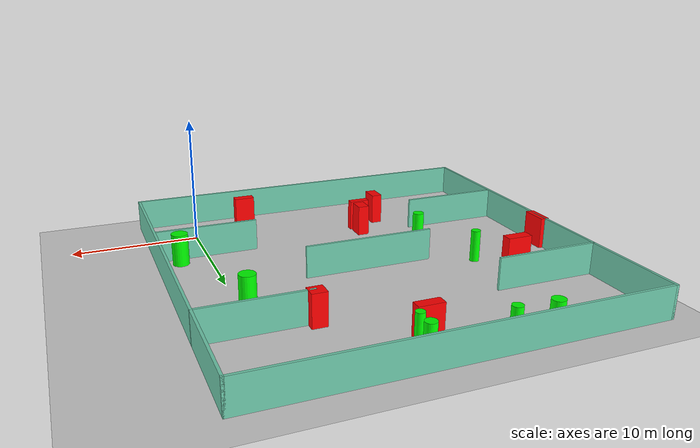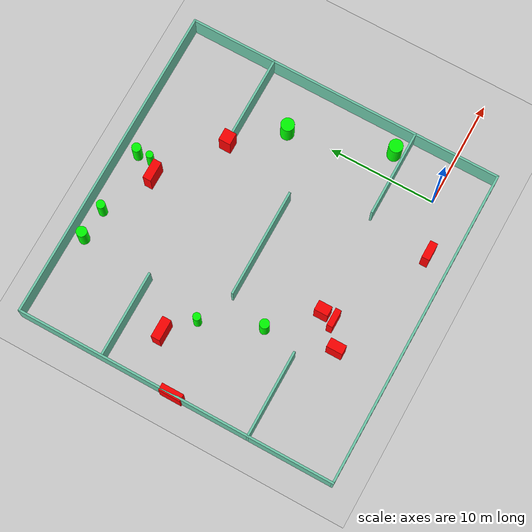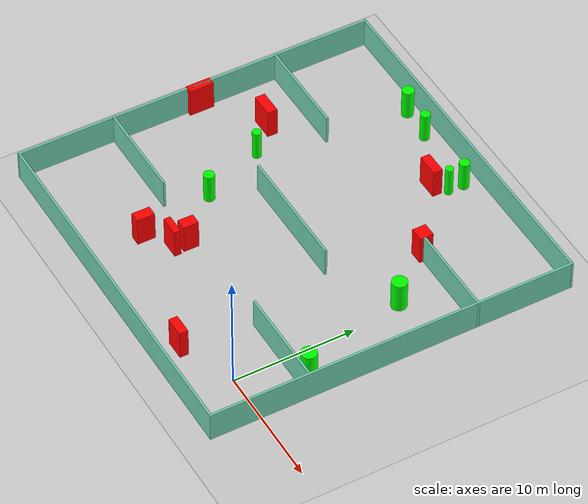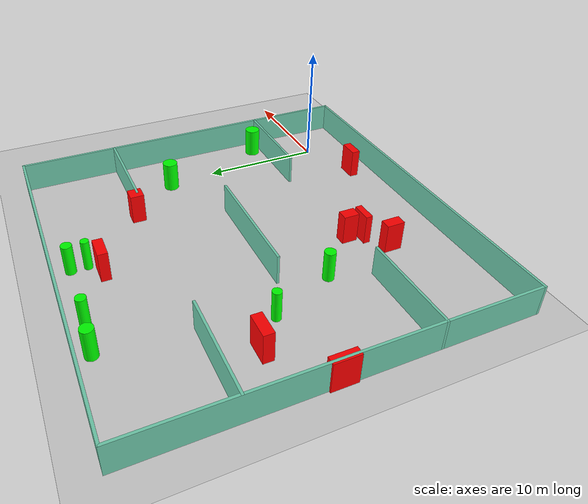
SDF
<sdf version="1.7">
 <world name="default">
  <light name="sun" type="directional">
   <pose>0 0 10 0 -0 0</pose>
   <diffuse>0.8 0.8 0.8 1</diffuse>
   <specular>0.2 0.2 0.2 1</specular>
   <attenuation>
    <range>1000</range>
    <constant>0.9</constant>
    <linear>0.01</linear>
    <quadratic>0.001</quadratic>
   </attenuation>
   <direction>-0.5 0.1 -0.9</direction>
   <spot><inner_angle>0</inner_angle><outer_angle>0</outer_angle><falloff>0</falloff></spot>
  </light>
  <model name="ground_plane">
   <static>1</static>
   <link name="link">
    <collision name="collision">
     <geometry><plane><normal>0 0 1</normal><size>100 100</size></plane></geometry>
     <surface>
      <contact><collide_bitmask>65535</collide_bitmask></contact>
      <friction><ode><mu>100</mu><mu2>50</mu2></ode></friction>
     </surface>
    </collision>
    <visual name="visual">
     <cast_shadows>0</cast_shadows>
     <geometry><plane><normal>0 0 1</normal><size>100 100</size></plane></geometry>
     <material>
      <script><uri>file://media/materials/scripts/gazebo.material</uri><name>Gazebo/Grey</name></script>
     </material>
    </visual>
   </link>
  </model>
  <gravity>0 0 -9.8</gravity>
  <magnetic_field>6e-06 2.3e-05 -4.2e-05</magnetic_field>
  <atmosphere type="adiabatic"/>
  <physics type="ode">
   <max_step_size>0.001</max_step_size>
   <real_time_factor>1</real_time_factor>
   <real_time_update_rate>1000</real_time_update_rate>
  </physics>
  <scene><ambient>0.4 0.4 0.4 1</ambient><background>0.7 0.7 0.7 1</background><shadows>1</shadows></scene>
  <spherical_coordinates>
   <surface_model>EARTH_WGS84</surface_model>
   <latitude_deg>0</latitude_deg>
   <longitude_deg>0</longitude_deg>
   <elevation>0</elevation>
   <heading_deg>0</heading_deg>
  </spherical_coordinates>
  <model name="my_base_walls">
   <link name="Wall_10">
    <collision name="Wall_10_Collision">
     <geometry><box><size>8.2 0.2 2.5</size></box></geometry>
     <pose>0 0 1.25 0 -0 0</pose>
    </collision>
    <visual name="Wall_10_Visual">
     <pose>0 0 1.25 0 -0 0</pose>
     <geometry><box><size>8.2 0.2 2.5</size></box></geometry>
     <material>
      <script><uri>file://media/materials/scripts/gazebo.material</uri><name>Gazebo/Grey</name></script>
      <ambient>0.435294 0.796078 0.67451 1</ambient>
     </material>
     <meta><layer>0</layer></meta>
    </visual>
    <pose>-11 -7 0 0 -0 0</pose>
   </link>
   <link name="Wall_12">
    <collision name="Wall_12_Collision">
     <geometry><box><size>8.2 0.2 2.5</size></box></geometry>
     <pose>0 0 1.25 0 -0 0</pose>
    </collision>
    <visual name="Wall_12_Visual">
     <pose>0 0 1.25 0 -0 0</pose>
     <geometry><box><size>8.2 0.2 2.5</size></box></geometry>
     <material>
      <script><uri>file://media/materials/scripts/gazebo.material</uri><name>Gazebo/Grey</name></script>
      <ambient>0.435294 0.796078 0.67451 1</ambient>
     </material>
     <meta><layer>0</layer></meta>
    </visual>
    <pose>-11 7 0 0 -0 0</pose>
   </link>
   <link name="Wall_14">
    <collision name="Wall_14_Collision">
     <geometry><box><size>8.2 0.2 2.5</size></box></geometry>
     <pose>0 0 1.25 0 -0 0</pose>
    </collision>
    <visual name="Wall_14_Visual">
     <pose>0 0 1.25 0 -0 0</pose>
     <geometry><box><size>8.2 0.2 2.5</size></box></geometry>
     <material>
      <script><uri>file://media/materials/scripts/gazebo.material</uri><name>Gazebo/Grey</name></script>
      <ambient>0.435294 0.796078 0.67451 1</ambient>
     </material>
     <meta><layer>0</layer></meta>
    </visual>
    <pose>11 7 0 0 -0 3.14159</pose>
   </link>
   <link name="Wall_16">
    <collision name="Wall_16_Collision">
     <geometry><box><size>10.2 0.2 2.5</size></box></geometry>
     <pose>0 0 1.25 0 -0 0</pose>
    </collision>
    <visual name="Wall_16_Visual">
     <pose>0 0 1.25 0 -0 0</pose>
     <geometry><box><size>10.2 0.2 2.5</size></box></geometry>
     <material>
      <script><uri>file://media/materials/scripts/gazebo.material</uri><name>Gazebo/Grey</name></script>
      <ambient>0.435294 0.796078 0.67451 1</ambient>
     </material>
     <meta><layer>0</layer></meta>
    </visual>
    <pose>0 0 0 0 -0 3.14159</pose>
   </link>
   <link name="Wall_2">
    <collision name="Wall_2_Collision">
     <geometry><box><size>30.2 0.2 2.5</size></box></geometry>
     <pose>0 0 1.25 0 -0 0</pose>
    </collision>
    <visual name="Wall_2_Visual">
     <pose>0 0 1.25 0 -0 0</pose>
     <geometry><box><size>30.2 0.2 2.5</size></box></geometry>
     <material>
      <script><uri>file://media/materials/scripts/gazebo.material</uri><name>Gazebo/Grey</name></script>
      <ambient>0.435294 0.796078 0.67451 1</ambient>
     </material>
     <meta><layer>0</layer></meta>
    </visual>
    <pose>0 -15 0 0 -0 3.14159</pose>
   </link>
   <link name="Wall_3">
    <collision name="Wall_3_Collision">
     <geometry><box><size>30.2 0.2 2.5</size></box></geometry>
     <pose>0 0 1.25 0 -0 0</pose>
    </collision>
    <visual name="Wall_3_Visual">
     <pose>0 0 1.25 0 -0 0</pose>
     <geometry><box><size>30.2 0.2 2.5</size></box></geometry>
     <material>
      <script><uri>file://media/materials/scripts/gazebo.material</uri><name>Gazebo/Grey</name></script>
      <ambient>0.435294 0.796078 0.67451 1</ambient>
     </material>
     <meta><layer>0</layer></meta>
    </visual>
    <pose>-15 0 0 0 -0 1.5708</pose>
   </link>
   <link name="Wall_4">
    <collision name="Wall_4_Collision">
     <geometry><box><size>30.2 0.2 2.5</size></box></geometry>
     <pose>0 0 1.25 0 -0 0</pose>
    </collision>
    <visual name="Wall_4_Visual">
     <pose>0 0 1.25 0 -0 0</pose>
     <geometry><box><size>30.2 0.2 2.5</size></box></geometry>
     <material>
      <script><uri>file://media/materials/scripts/gazebo.material</uri><name>Gazebo/Grey</name></script>
      <ambient>0.435294 0.796078 0.67451 1</ambient>
     </material>
     <meta><layer>0</layer></meta>
    </visual>
    <pose>0 15 0 0 -0 0</pose>
   </link>
   <link name="Wall_6">
    <collision name="Wall_6_Collision">
     <geometry><box><size>30.2 0.2 2.5</size></box></geometry>
     <pose>0 0 1.25 0 -0 0</pose>
    </collision>
    <visual name="Wall_6_Visual">
     <pose>0 0 1.25 0 -0 0</pose>
     <geometry><box><size>30.2 0.2 2.5</size></box></geometry>
     <material>
      <script><uri>file://media/materials/scripts/gazebo.material</uri><name>Gazebo/Grey</name></script>
      <ambient>0.435294 0.796078 0.67451 1</ambient>
     </material>
     <meta><layer>0</layer></meta>
    </visual>
    <pose>15 0 0 0 -0 1.5708</pose>
   </link>
   <link name="Wall_8">
    <collision name="Wall_8_Collision">
     <geometry><box><size>8.2 0.2 2.5</size></box></geometry>
     <pose>0 0 1.25 0 -0 0</pose>
    </collision>
    <visual name="Wall_8_Visual">
     <pose>0 0 1.25 0 -0 0</pose>
     <geometry><box><size>8.2 0.2 2.5</size></box></geometry>
     <material>
      <script><uri>file://media/materials/scripts/gazebo.material</uri><name>Gazebo/Grey</name></script>
      <ambient>0.435294 0.796078 0.67451 1</ambient>
     </material>
     <meta><layer>0</layer></meta>
    </visual>
    <pose>11 -7 0 0 -0 3.14159</pose>
   </link>
   <static>1</static>
   <pose>-11 11 0 0 -0 0</pose>
  </model>
  <model name="cylinder1">
   <static>1</static>
   <link name="link">
    <inertial>
     <mass>1</mass>
     <inertia><ixx>0.5</ixx><ixy>0</ixy><ixz>0</ixz><iyy>0.5</iyy><iyz>0</iyz><izz>1</izz></inertia>
    </inertial>
    <collision name="collision">
     <geometry><cylinder><radius>0.44687036768001454</radius><length>2.5</length></cylinder></geometry>
    </collision>
    <visual name="visual">
     <geometry><cylinder><radius>0.44687036768001454</radius><length>2.5</length></cylinder></geometry>
     <material>
      <ambient>0 1 0 1</ambient>
      <diffuse>0 1 0 1</diffuse>
      <specular>0.1 0.1 0.1 1</specular>
      <emissive>0 0 0 0</emissive>
     </material>
    </visual>
   </link>
   <pose>-17.05269576290987 7.336056655297874 1.25 0 0 0</pose>
  </model>
  <model name="cylinder2">
   <static>1</static>
   <link name="link">
    <inertial>
     <mass>1</mass>
     <inertia><ixx>0.5</ixx><ixy>0</ixy><ixz>0</ixz><iyy>0.5</iyy><iyz>0</iyz><izz>1</izz></inertia>
    </inertial>
    <collision name="collision">
     <geometry><cylinder><radius>0.6395360127889456</radius><length>2.5</length></cylinder></geometry>
    </collision>
    <visual name="visual">
     <geometry><cylinder><radius>0.6395360127889456</radius><length>2.5</length></cylinder></geometry>
     <material>
      <ambient>0 1 0 1</ambient>
      <diffuse>0 1 0 1</diffuse>
      <specular>0.1 0.1 0.1 1</specular>
      <emissive>0 0 0 0</emissive>
     </material>
    </visual>
   </link>
   <pose>2.2364916653880265 4.962825246812168 1.25 0 0 0</pose>
  </model>
  <model name="cylinder3">
   <static>1</static>
   <link name="link">
    <inertial>
     <mass>1</mass>
     <inertia><ixx>0.5</ixx><ixy>0</ixy><ixz>0</ixz><iyy>0.5</iyy><iyz>0</iyz><izz>1</izz></inertia>
    </inertial>
    <collision name="collision">
     <geometry><cylinder><radius>0.3993835181001865</radius><length>2.5</length></cylinder></geometry>
    </collision>
    <visual name="visual">
     <geometry><cylinder><radius>0.3993835181001865</radius><length>2.5</length></cylinder></geometry>
     <material>
      <ambient>0 1 0 1</ambient>
      <diffuse>0 1 0 1</diffuse>
      <specular>0.1 0.1 0.1 1</specular>
      <emissive>0 0 0 0</emissive>
     </material>
    </visual>
   </link>
   <pose>-14.688437582713519 24.706926248633167 1.25 0 0 0</pose>
  </model>
  <model name="cylinder4">
   <static>1</static>
   <link name="link">
    <inertial>
     <mass>1</mass>
     <inertia><ixx>0.5</ixx><ixy>0</ixy><ixz>0</ixz><iyy>0.5</iyy><iyz>0</iyz><izz>1</izz></inertia>
    </inertial>
    <collision name="collision">
     <geometry><cylinder><radius>0.36242091760106643</radius><length>2.5</length></cylinder></geometry>
    </collision>
    <visual name="visual">
     <geometry><cylinder><radius>0.36242091760106643</radius><length>2.5</length></cylinder></geometry>
     <material>
      <ambient>0 1 0 1</ambient>
      <diffuse>0 1 0 1</diffuse>
      <specular>0.1 0.1 0.1 1</specular>
      <emissive>0 0 0 0</emissive>
     </material>
    </visual>
   </link>
   <pose>-19.270998087935947 12.637884869131678 1.25 0 0 0</pose>
  </model>
  <model name="cylinder5">
   <static>1</static>
   <link name="link">
    <inertial>
     <mass>1</mass>
     <inertia><ixx>0.5</ixx><ixy>0</ixy><ixz>0</ixz><iyy>0.5</iyy><iyz>0</iyz><izz>1</izz></inertia>
    </inertial>
    <collision name="collision">
     <geometry><cylinder><radius>0.6267005116322213</radius><length>2.5</length></cylinder></geometry>
    </collision>
    <visual name="visual">
     <geometry><cylinder><radius>0.6267005116322213</radius><length>2.5</length></cylinder></geometry>
     <material>
      <ambient>0 1 0 1</ambient>
      <diffuse>0 1 0 1</diffuse>
      <specular>0.1 0.1 0.1 1</specular>
      <emissive>0 0 0 0</emissive>
     </material>
    </visual>
   </link>
   <pose>-0.5888284206452923 14.1237375839071 1.25 0 0 0</pose>
  </model>
  <model name="cylinder6">
   <static>1</static>
   <link name="link">
    <inertial>
     <mass>1</mass>
     <inertia><ixx>0.5</ixx><ixy>0</ixy><ixz>0</ixz><iyy>0.5</iyy><iyz>0</iyz><izz>1</izz></inertia>
    </inertial>
    <collision name="collision">
     <geometry><cylinder><radius>0.49183618124215434</radius><length>2.5</length></cylinder></geometry>
    </collision>
    <visual name="visual">
     <geometry><cylinder><radius>0.49183618124215434</radius><length>2.5</length></cylinder></geometry>
     <material>
      <ambient>0 1 0 1</ambient>
      <diffuse>0 1 0 1</diffuse>
      <specular>0.1 0.1 0.1 1</specular>
      <emissive>0 0 0 0</emissive>
     </material>
    </visual>
   </link>
   <pose>-17.573673819482984 24.903612209244137 1.25 0 0 0</pose>
  </model>
  <model name="cylinder7">
   <static>1</static>
   <link name="link">
    <inertial>
     <mass>1</mass>
     <inertia><ixx>0.5</ixx><ixy>0</ixy><ixz>0</ixz><iyy>0.5</iyy><iyz>0</iyz><izz>1</izz></inertia>
    </inertial>
    <collision name="collision">
     <geometry><cylinder><radius>0.4280964906349598</radius><length>2.5</length></cylinder></geometry>
    </collision>
    <visual name="visual">
     <geometry><cylinder><radius>0.4280964906349598</radius><length>2.5</length></cylinder></geometry>
     <material>
      <ambient>0 1 0 1</ambient>
      <diffuse>0 1 0 1</diffuse>
      <specular>0.1 0.1 0.1 1</specular>
      <emissive>0 0 0 0</emissive>
     </material>
    </visual>
   </link>
   <pose>-8.767879723684748 24.59889951683949 1.25 0 0 0</pose>
  </model>
  <model name="cylinder8">
   <static>1</static>
   <link name="link">
    <inertial>
     <mass>1</mass>
     <inertia><ixx>0.5</ixx><ixy>0</ixy><ixz>0</ixz><iyy>0.5</iyy><iyz>0</iyz><izz>1</izz></inertia>
    </inertial>
    <collision name="collision">
     <geometry><cylinder><radius>0.3307228317909163</radius><length>2.5</length></cylinder></geometry>
    </collision>
    <visual name="visual">
     <geometry><cylinder><radius>0.3307228317909163</radius><length>2.5</length></cylinder></geometry>
     <material>
      <ambient>0 1 0 1</ambient>
      <diffuse>0 1 0 1</diffuse>
      <specular>0.1 0.1 0.1 1</specular>
      <emissive>0 0 0 0</emissive>
     </material>
    </visual>
   </link>
   <pose>-8.76804378039928 23.28056100407244 1.25 0 0 0</pose>
  </model>
  <model name="box1">
   <static>1</static>
   <link name="link">
    <inertial>
     <mass>1</mass>
     <inertia><ixx>0.083</ixx><ixy>0</ixy><ixz>0</ixz><iyy>0.083</iyy><iyz>0</iyz><izz>0.083</izz></inertia>
    </inertial>
    <collision name="collision">
     <geometry><box><size>0.8669249724685211 1.4897436704847882 2.5</size></box></geometry>
    </collision>
    <visual name="visual">
     <geometry><box><size>0.8669249724685211 1.4897436704847882 2.5</size></box></geometry>
     <material>
      <ambient>1 0 0 1</ambient>
      <diffuse>1 0 0 1</diffuse>
      <specular>0.1 0.1 0.1 1</specular>
      <emissive>0 0 0 0</emissive>
     </material>
    </visual>
    <sensor name="my_contact" type="contact">
     <contact><collision>box_collision</collision><topic>__default_topic__</topic></contact>
    </sensor>
   </link>
   <pose>-15.807424911364867 1.1288373693781875 1.25 0 0 0</pose>
  </model>
  <model name="box2">
   <static>1</static>
   <link name="link">
    <inertial>
     <mass>1</mass>
     <inertia><ixx>0.083</ixx><ixy>0</ixy><ixz>0</ixz><iyy>0.083</iyy><iyz>0</iyz><izz>0.083</izz></inertia>
    </inertial>
    <collision name="collision">
     <geometry><box><size>1.1518098753486514 1.1173406749977894 2.5</size></box></geometry>
    </collision>
    <visual name="visual">
     <geometry><box><size>1.1518098753486514 1.1173406749977894 2.5</size></box></geometry>
     <material>
      <ambient>1 0 0 1</ambient>
      <diffuse>1 0 0 1</diffuse>
      <specular>0.1 0.1 0.1 1</specular>
      <emissive>0 0 0 0</emissive>
     </material>
    </visual>
    <sensor name="my_contact" type="contact">
     <contact><collision>box_collision</collision><topic>__default_topic__</topic></contact>
    </sensor>
   </link>
   <pose>-4.074132746453136 18.172070715219096 1.25 0 0 0</pose>
  </model>
  <model name="box3">
   <static>1</static>
   <link name="link">
    <inertial>
     <mass>1</mass>
     <inertia><ixx>0.083</ixx><ixy>0</ixy><ixz>0</ixz><iyy>0.083</iyy><iyz>0</iyz><izz>0.083</izz></inertia>
    </inertial>
    <collision name="collision">
     <geometry><box><size>1.6429499089401132 0.719364539008151 2.5</size></box></geometry>
    </collision>
    <visual name="visual">
     <geometry><box><size>1.6429499089401132 0.719364539008151 2.5</size></box></geometry>
     <material>
      <ambient>1 0 0 1</ambient>
      <diffuse>1 0 0 1</diffuse>
      <specular>0.1 0.1 0.1 1</specular>
      <emissive>0 0 0 0</emissive>
     </material>
    </visual>
    <sensor name="my_contact" type="contact">
     <contact><collision>box_collision</collision><topic>__default_topic__</topic></contact>
    </sensor>
   </link>
   <pose>-4.67613254034327 -1.9009409776360315 1.25 0 0 0</pose>
  </model>
  <model name="box4">
   <static>1</static>
   <link name="link">
    <inertial>
     <mass>1</mass>
     <inertia><ixx>0.083</ixx><ixy>0</ixy><ixz>0</ixz><iyy>0.083</iyy><iyz>0</iyz><izz>0.083</izz></inertia>
    </inertial>
    <collision name="collision">
     <geometry><box><size>1.99339184411977 0.8409389265239713 2.5</size></box></geometry>
    </collision>
    <visual name="visual">
     <geometry><box><size>1.99339184411977 0.8409389265239713 2.5</size></box></geometry>
     <material>
      <ambient>1 0 0 1</ambient>
      <diffuse>1 0 0 1</diffuse>
      <specular>0.1 0.1 0.1 1</specular>
      <emissive>0 0 0 0</emissive>
     </material>
    </visual>
    <sensor name="my_contact" type="contact">
     <contact><collision>box_collision</collision><topic>__default_topic__</topic></contact>
    </sensor>
   </link>
   <pose>-21.598740034782814 14.757906224433857 1.25 0 0 0</pose>
  </model>
  <model name="box5">
   <static>1</static>
   <link name="link">
    <inertial>
     <mass>1</mass>
     <inertia><ixx>0.083</ixx><ixy>0</ixy><ixz>0</ixz><iyy>0.083</iyy><iyz>0</iyz><izz>0.083</izz></inertia>
    </inertial>
    <collision name="collision">
     <geometry><box><size>0.6806191673772609 2.0524520147780354 2.5</size></box></geometry>
    </collision>
    <visual name="visual">
     <geometry><box><size>0.6806191673772609 2.0524520147780354 2.5</size></box></geometry>
     <material>
      <ambient>1 0 0 1</ambient>
      <diffuse>1 0 0 1</diffuse>
      <specular>0.1 0.1 0.1 1</specular>
      <emissive>0 0 0 0</emissive>
     </material>
    </visual>
    <sensor name="my_contact" type="contact">
     <contact><collision>box_collision</collision><topic>__default_topic__</topic></contact>
    </sensor>
   </link>
   <pose>-25.893888627843413 11.339613483167149 1.25 0 0 0</pose>
  </model>
  <model name="box6">
   <static>1</static>
   <link name="link">
    <inertial>
     <mass>1</mass>
     <inertia><ixx>0.083</ixx><ixy>0</ixy><ixz>0</ixz><iyy>0.083</iyy><iyz>0</iyz><izz>0.083</izz></inertia>
    </inertial>
    <collision name="collision">
     <geometry><box><size>1.6412650739449732 0.5529310800098063 2.5</size></box></geometry>
    </collision>
    <visual name="visual">
     <geometry><box><size>1.6412650739449732 0.5529310800098063 2.5</size></box></geometry>
     <material>
      <ambient>1 0 0 1</ambient>
      <diffuse>1 0 0 1</diffuse>
      <specular>0.1 0.1 0.1 1</specular>
      <emissive>0 0 0 0</emissive>
     </material>
    </visual>
    <sensor name="my_contact" type="contact">
     <contact><collision>box_collision</collision><topic>__default_topic__</topic></contact>
    </sensor>
   </link>
   <pose>-13.764330200902972 2.4639156067650028 1.25 0 0 0</pose>
  </model>
  <model name="box7">
   <static>1</static>
   <link name="link">
    <inertial>
     <mass>1</mass>
     <inertia><ixx>0.083</ixx><ixy>0</ixy><ixz>0</ixz><iyy>0.083</iyy><iyz>0</iyz><izz>0.083</izz></inertia>
    </inertial>
    <collision name="collision">
     <geometry><box><size>1.9074627469223882 0.7801172478410052 2.5</size></box></geometry>
    </collision>
    <visual name="visual">
     <geometry><box><size>1.9074627469223882 0.7801172478410052 2.5</size></box></geometry>
     <material>
      <ambient>1 0 0 1</ambient>
      <diffuse>1 0 0 1</diffuse>
      <specular>0.1 0.1 0.1 1</specular>
      <emissive>0 0 0 0</emissive>
     </material>
    </visual>
    <sensor name="my_contact" type="contact">
     <contact><collision>box_collision</collision><topic>__default_topic__</topic></contact>
    </sensor>
   </link>
   <pose>-9.873074580112574 22.383293969253312 1.25 0 0 0</pose>
  </model>
  <model name="box8">
   <static>1</static>
   <link name="link">
    <inertial>
     <mass>1</mass>
     <inertia><ixx>0.083</ixx><ixy>0</ixy><ixz>0</ixz><iyy>0.083</iyy><iyz>0</iyz><izz>0.083</izz></inertia>
    </inertial>
    <collision name="collision">
     <geometry><box><size>0.9190254310880667 1.2752385255900434 2.5</size></box></geometry>
    </collision>
    <visual name="visual">
     <geometry><box><size>0.9190254310880667 1.2752385255900434 2.5</size></box></geometry>
     <material>
      <ambient>1 0 0 1</ambient>
      <diffuse>1 0 0 1</diffuse>
      <specular>0.1 0.1 0.1 1</specular>
      <emissive>0 0 0 0</emissive>
     </material>
    </visual>
    <sensor name="my_contact" type="contact">
     <contact><collision>box_collision</collision><topic>__default_topic__</topic></contact>
    </sensor>
   </link>
   <pose>-13.484185813682327 3.6459847402190073 1.25 0 0 0</pose>
  </model>
 </world>
</sdf>
